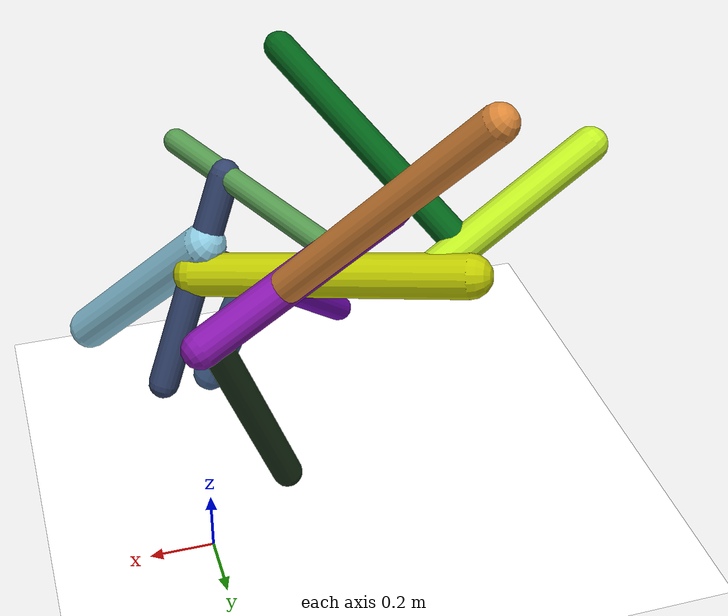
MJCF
<mujoco model="morphology">
  <option timestep="0.01"/>
  <default>
    <default class="/"/>
    <default class="0/"/>
    <default class="0/1/"/>
    <default class="0/2/"/>
    <default class="0/2/3/"/>
    <default class="0/2/3/4/"/>
    <default class="0/2/3/4/5/"/>
    <default class="0/2/3/4/5/6/"/>
    <default class="0/2/3/7/"/>
    <default class="0/2/3/7/8/"/>
    <default class="0/2/3/7/8/9/"/>
    <default class="0/10/"/>
  </default>
  <asset>
    <texture name="texplane" type="2d" builtin="checker" rgb1="0.10000000000000001 0.20000000000000001 0.29999999999999999" rgb2="0.20000000000000001 0.29999999999999999 0.40000000000000002" width="300" height="300"/>
    <material name="MatPlane" class="/" texture="texplane" texrepeat="20 20" specular="1" shininess="1" reflectance="0.5"/>
  </asset>
  <worldbody>
    <light name="//unnamed_light_0" class="/" directional="true" pos="0 0 1.5" dir="0 0 -1.3" cutoff="100" exponent="1" diffuse="1 1 1" specular="0.10000000000000001 0.10000000000000001 0.10000000000000001"/>
    <geom name="ground" class="/" type="plane" size="15 15 0.5" material="MatPlane" rgba="1 1 1 1"/>
    <site name="body" class="/" size="9.9999999999999995e-07 9.9999999999999995e-07 9.9999999999999995e-07" pos="0 0 0.77324995994567869"/>
    <body pos="0 0 0.77324995994567869" name="0/">
      <freejoint name="0/"/>
      <geom name="0/geom" class="0/" type="capsule" contype="1" conaffinity="1" condim="3" size="0.058286365520991125" rgba="0.53131681539357278 0.087090393785219322 0.68147886682230707 1" friction="0.59999999999999998 0.10000000000000001 0.10000000000000001" fromto="0 0 0 -0.60235649590779339 -0.1367480983390057 0.28209050380961198"/>
      <site name="0/end0" class="0/" size="0.0050000000000000001" pos="-0.60235649590779339 -0.1367480983390057 0.28209050380961198"/>
      <site name="0/attach1" class="0/" size="9.9999999999999995e-07 9.9999999999999995e-07 9.9999999999999995e-07" pos="-0.035174868615798272 -0.0079854644636738505 0.016472797216727193"/>
      <body pos="-0.035174868615798272 -0.0079854644636738505 0.016472797216727193" name="0/1/">
        <joint name="0/1/joint/" class="0/" type="hinge" axis="0 0 1" limited="true" range="-39.348695203276876 39.348695203276876"/>
        <geom name="0/1/geom" class="0/1/" type="capsule" contype="1" conaffinity="1" condim="3" size="0.047485996170656797" rgba="0.096959016274733356 0.19012276992587618 0.091708374620212529 1" friction="0.59999999999999998 0.10000000000000001 0.10000000000000001" fromto="0 0 0 -0.23079797287615889 -0.084081606292986999 -0.63293791730475157"/>
        <site name="0/1/end1" class="0/1/" size="0.0050000000000000001" pos="-0.23079797287615889 -0.084081606292986999 -0.63293791730475157"/>
      </body>
      <site name="0/attach2" class="0/" size="9.9999999999999995e-07 9.9999999999999995e-07 9.9999999999999995e-07" pos="-0.41524274967644187 -0.094269185694986574 0.19446297542285798"/>
      <body pos="-0.41524274967644187 -0.094269185694986574 0.19446297542285798" name="0/2/">
        <joint name="0/2/joint/" class="0/" type="hinge" axis="0 1 0" limited="true" range="-50.673322531357066 50.673322531357066"/>
        <geom name="0/2/geom" class="0/2/" type="capsule" contype="1" conaffinity="1" condim="3" size="0.038669352575092061" rgba="0.32773100328396121 0.59226189986170141 0.30675772909429377 1" friction="0.59999999999999998 0.10000000000000001 0.10000000000000001" fromto="0 0 0 0.34004461499453242 -0.55781484849628937 0.10784149799031317"/>
        <site name="0/2/end2" class="0/2/" size="0.0050000000000000001" pos="0.34004461499453242 -0.55781484849628937 0.10784149799031317"/>
        <site name="0/2/attach3" class="0/2/" size="9.9999999999999995e-07 9.9999999999999995e-07 9.9999999999999995e-07" pos="0.23068977567018417 -0.37842734920879678 0.073160785033228592"/>
        <body pos="0.23068977567018417 -0.37842734920879678 0.073160785033228592" name="0/2/3/">
          <geom name="0/2/3/geom" class="0/2/3/" type="capsule" contype="1" conaffinity="1" condim="3" size="0.048196844195484659" rgba="0.194972537321498 0.25901136975569927 0.41747375598082337 1" friction="0.59999999999999998 0.10000000000000001 0.10000000000000001" fromto="0 0 0 0.25552161887260882 0.16270890176548447 -0.61711781576840674"/>
          <site name="0/2/3/end3" class="0/2/3/" size="0.0050000000000000001" pos="0.25552161887260882 0.16270890176548447 -0.61711781576840674"/>
          <site name="0/2/3/attach4" class="0/2/3/" size="9.9999999999999995e-07 9.9999999999999995e-07 9.9999999999999995e-07" pos="0.084064760607244285 0.053530049378727268 -0.2030272885634013"/>
          <body pos="0.084064760607244285 0.053530049378727268 -0.2030272885634013" name="0/2/3/4/">
            <joint name="0/2/3/4/joint/" class="0/2/3/" type="hinge" axis="2.2204460492503131e-16 0.96695508646074235 0.25494678026540823" limited="true" range="-69.691313945014457 69.691313945014457"/>
            <geom name="0/2/3/4/geom" class="0/2/3/4/" type="capsule" contype="1" conaffinity="1" condim="3" size="0.069365691491402565" rgba="0.55053611342657494 0.79452475360467545 0.88332604843653784 1" friction="0.59999999999999998 0.10000000000000001 0.10000000000000001" fromto="0 0 0 0.34096621471647359 -0.38731363930335039 -0.52465299420552935"/>
            <site name="0/2/3/4/end4" class="0/2/3/4/" size="0.0050000000000000001" pos="0.34096621471647359 -0.38731363930335039 -0.52465299420552935"/>
            <site name="0/2/3/4/attach5" class="0/2/3/4/" size="9.9999999999999995e-07 9.9999999999999995e-07 9.9999999999999995e-07" pos="0.034856335839123426 -0.039594346020049929 -0.053634290365795756"/>
            <body pos="0.034856335839123426 -0.039594346020049929 -0.053634290365795756" name="0/2/3/4/5/">
              <joint name="0/2/3/4/5/joint/" class="0/2/3/4/" type="hinge" axis="-5.5511151231257827e-17 -0.80452296334358953 0.59392154486333382" limited="true" range="-40.598159050621568 40.598159050621568"/>
              <geom name="0/2/3/4/5/geom" class="0/2/3/4/5/" type="capsule" contype="1" conaffinity="1" condim="3" size="0.047724938827500188" rgba="0.45124043340129616 0.039621455234082781 0.71993021692694781 1" friction="0.59999999999999998 0.10000000000000001 0.10000000000000001" fromto="0 0 0 -0.62248729874454112 -0.50376418235960707 -0.68421215272309177"/>
              <site name="0/2/3/4/5/end5" class="0/2/3/4/5/" size="0.0050000000000000001" pos="-0.62248729874454112 -0.50376418235960707 -0.68421215272309177"/>
              <site name="0/2/3/4/5/attach6" class="0/2/3/4/5/" size="9.9999999999999995e-07 9.9999999999999995e-07 9.9999999999999995e-07" pos="-0.23287048044521652 -0.18845654748903765 -0.25596154821541173"/>
              <body pos="-0.23287048044521652 -0.18845654748903765 -0.25596154821541173" name="0/2/3/4/5/6/">
                <geom name="0/2/3/4/5/6/geom" class="0/2/3/4/5/6/" type="capsule" contype="1" conaffinity="1" condim="3" size="0.06003555934222652" rgba="0.27247002872478365 0.4009876041930065 0.57997228192279116 1" friction="0.59999999999999998 0.10000000000000001 0.10000000000000001" fromto="0 0 0 0.15628310746028073 -0.034719590350495988 -0.40132102925658303"/>
                <site name="0/2/3/4/5/6/end6" class="0/2/3/4/5/6/" size="0.0050000000000000001" pos="0.15628310746028073 -0.034719590350495988 -0.40132102925658303"/>
              </body>
            </body>
          </body>
          <site name="0/2/3/attach7" class="0/2/3/" size="9.9999999999999995e-07 9.9999999999999995e-07 9.9999999999999995e-07" pos="0.11972874395517641 0.07623985995650695 -0.28916042908741035"/>
          <body pos="0.11972874395517641 0.07623985995650695 -0.28916042908741035" name="0/2/3/7/">
            <joint name="0/2/3/7/joint/" class="0/2/3/" type="hinge" axis="2.2204460492503131e-16 0.96695508646074235 0.25494678026540823" limited="true" range="-31.591290347906327 31.591290347906327"/>
            <geom name="0/2/3/7/geom" class="0/2/3/7/" type="capsule" contype="1" conaffinity="1" condim="3" size="0.068101396736661407" rgba="0.75036603913224542 0.7895901450051197 0.0029696939305262626 1" friction="0.59999999999999998 0.10000000000000001 0.10000000000000001" fromto="0 0 0 -0.72130829266373064 0.43191335360261363 0.14608572151616572"/>
            <site name="0/2/3/7/end7" class="0/2/3/7/" size="0.0050000000000000001" pos="-0.72130829266373064 0.43191335360261363 0.14608572151616572"/>
            <site name="0/2/3/7/attach8" class="0/2/3/7/" size="9.9999999999999995e-07 9.9999999999999995e-07 9.9999999999999995e-07" pos="-0.60872592263664937 0.36449997503828863 0.12328454631454712"/>
            <body pos="-0.60872592263664937 0.36449997503828863 0.12328454631454712" name="0/2/3/7/8/">
              <geom name="0/2/3/7/8/geom" class="0/2/3/7/8/" type="capsule" contype="1" conaffinity="1" condim="3" size="0.055002788415417461" rgba="0.74931587716554604 0.92762511631396372 0.13540563380076076 1" friction="0.59999999999999998 0.10000000000000001 0.10000000000000001" fromto="0 0 0 -0.55369660014967137 -0.15033152454037602 0.26626087585081404"/>
              <site name="0/2/3/7/8/end8" class="0/2/3/7/8/" size="0.0050000000000000001" pos="-0.55369660014967137 -0.15033152454037602 0.26626087585081404"/>
              <site name="0/2/3/7/8/attach9" class="0/2/3/7/8/" size="9.9999999999999995e-07 9.9999999999999995e-07 9.9999999999999995e-07" pos="-0.12318195842251142 -0.033444546346355859 0.059235574373638161"/>
              <body pos="-0.12318195842251142 -0.033444546346355859 0.059235574373638161" name="0/2/3/7/8/9/">
                <joint name="0/2/3/7/8/9/joint/" class="0/2/3/7/8/" type="hinge" axis="0 0.87079215417854083 0.49165132382725912" limited="true" range="-47.912756875054562 47.912756875054562"/>
                <geom name="0/2/3/7/8/9/geom" class="0/2/3/7/8/9/" type="capsule" contype="1" conaffinity="1" condim="3" size="0.048739756609608484" rgba="0.0037546397219763161 0.38136025398027984 0.093878937337488311 1" friction="0.59999999999999998 0.10000000000000001 0.10000000000000001" fromto="0 0 0 0.37374777151118987 -0.65425171720923014 0.37954516837998709"/>
                <site name="0/2/3/7/8/9/end9" class="0/2/3/7/8/9/" size="0.0050000000000000001" pos="0.37374777151118987 -0.65425171720923014 0.37954516837998709"/>
              </body>
            </body>
          </body>
        </body>
      </body>
      <site name="0/attach10" class="0/" size="9.9999999999999995e-07 9.9999999999999995e-07 9.9999999999999995e-07" pos="-0.24997934854657022 -0.056750779264443697 0.11706821600259633"/>
      <body pos="-0.24997934854657022 -0.056750779264443697 0.11706821600259633" name="0/10/">
        <joint name="0/10/joint/" class="0/" type="hinge" axis="0 0 1" limited="true" range="-44.872708489943093 44.872708489943093"/>
        <geom name="0/10/geom" class="0/10/" type="capsule" contype="1" conaffinity="1" condim="3" size="0.052002730978267263" rgba="0.84974781022190315 0.52240731252726524 0.21656823360869448 1" friction="0.59999999999999998 0.10000000000000001 0.10000000000000001" fromto="0 0 0 -0.43404383981294586 0.43752227762620266 0.70302731200250435"/>
        <site name="0/10/end10" class="0/10/" size="0.0050000000000000001" pos="-0.43404383981294586 0.43752227762620266 0.70302731200250435"/>
      </body>
      <camera name="0/iso" class="0/" mode="trackcom" pos="-2.2999999999999998 -2.2999999999999998 1" xyaxes="0.45000000000000001 -0.45000000000000001 0 0.29999999999999999 0.14999999999999999 0.93999999999999995"/>
    </body>
  </worldbody>
  <actuator>
    <motor name="0/1/motor" class="0/1/" ctrllimited="true" ctrlrange="-1 1" gear="55" joint="0/1/joint/"/>
    <motor name="0/2/motor" class="0/2/" ctrllimited="true" ctrlrange="-1 1" gear="76" joint="0/2/joint/"/>
    <motor name="0/2/3/4/motor" class="0/2/3/4/" ctrllimited="true" ctrlrange="-1 1" gear="73" joint="0/2/3/4/joint/"/>
    <motor name="0/2/3/4/5/motor" class="0/2/3/4/5/" ctrllimited="true" ctrlrange="-1 1" gear="98" joint="0/2/3/4/5/joint/"/>
    <motor name="0/2/3/7/motor" class="0/2/3/7/" ctrllimited="true" ctrlrange="-1 1" gear="51" joint="0/2/3/7/joint/"/>
    <motor name="0/2/3/7/8/9/motor" class="0/2/3/7/8/9/" ctrllimited="true" ctrlrange="-1 1" gear="65" joint="0/2/3/7/8/9/joint/"/>
    <motor name="0/10/motor" class="0/10/" ctrllimited="true" ctrlrange="-1 1" gear="78" joint="0/10/joint/"/>
  </actuator>
  <sensor>
    <subtreelinvel name="velocity" body="0/"/>
  </sensor>
</mujoco>
